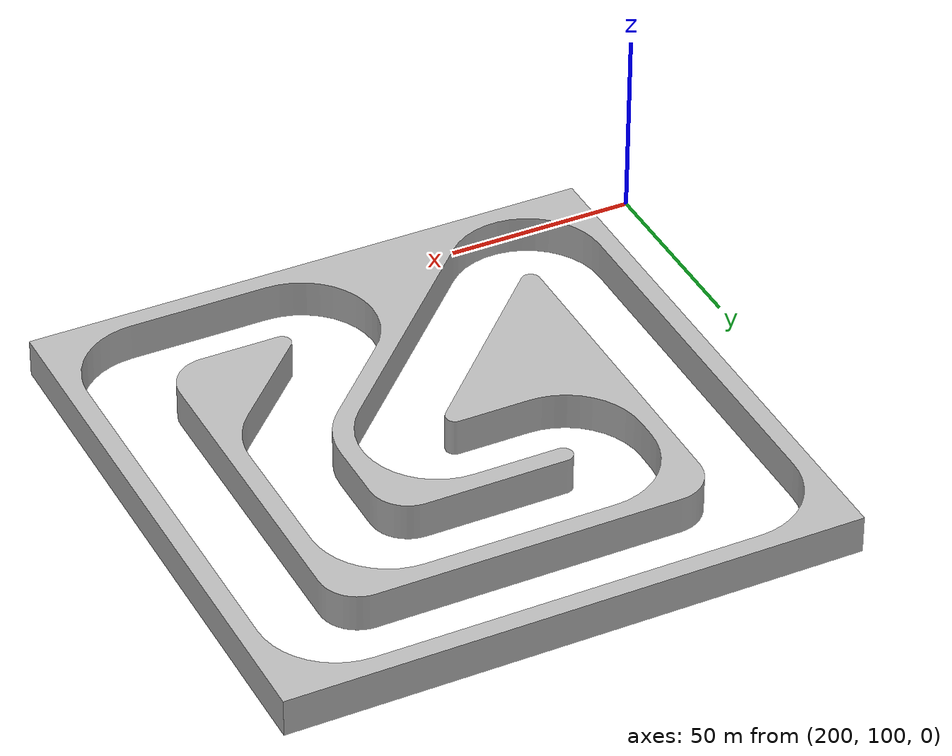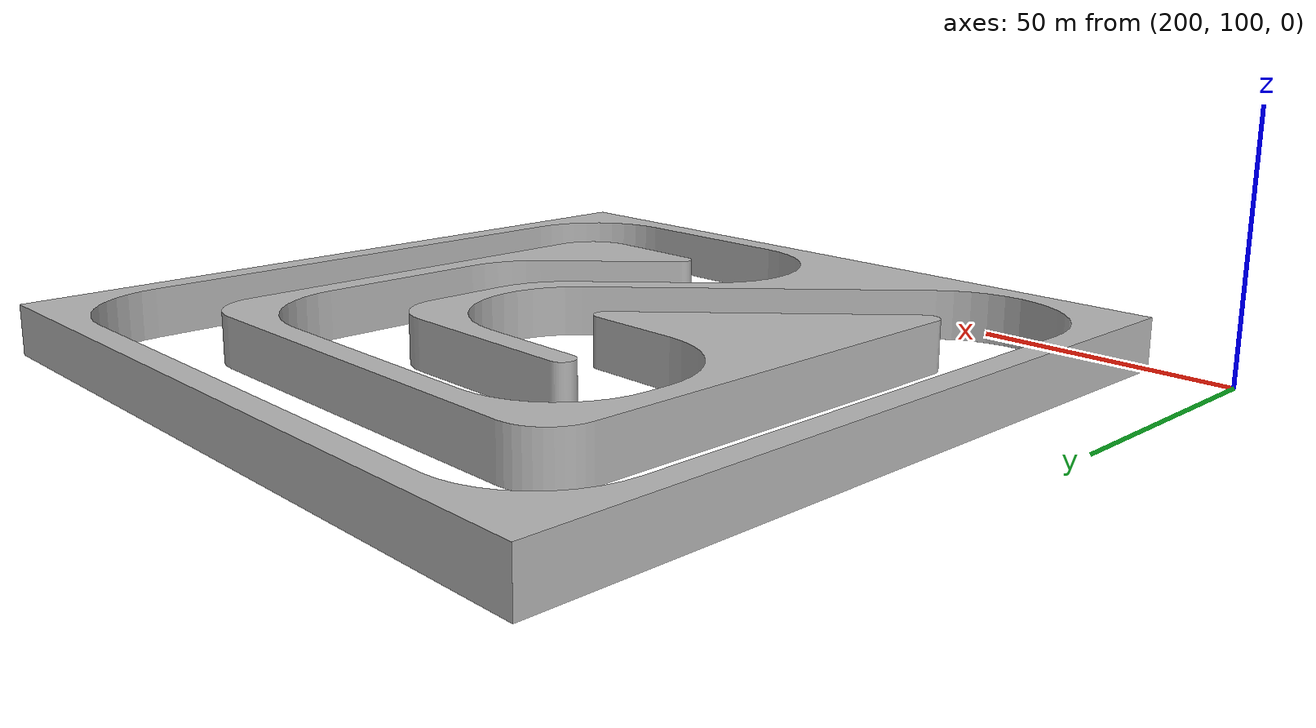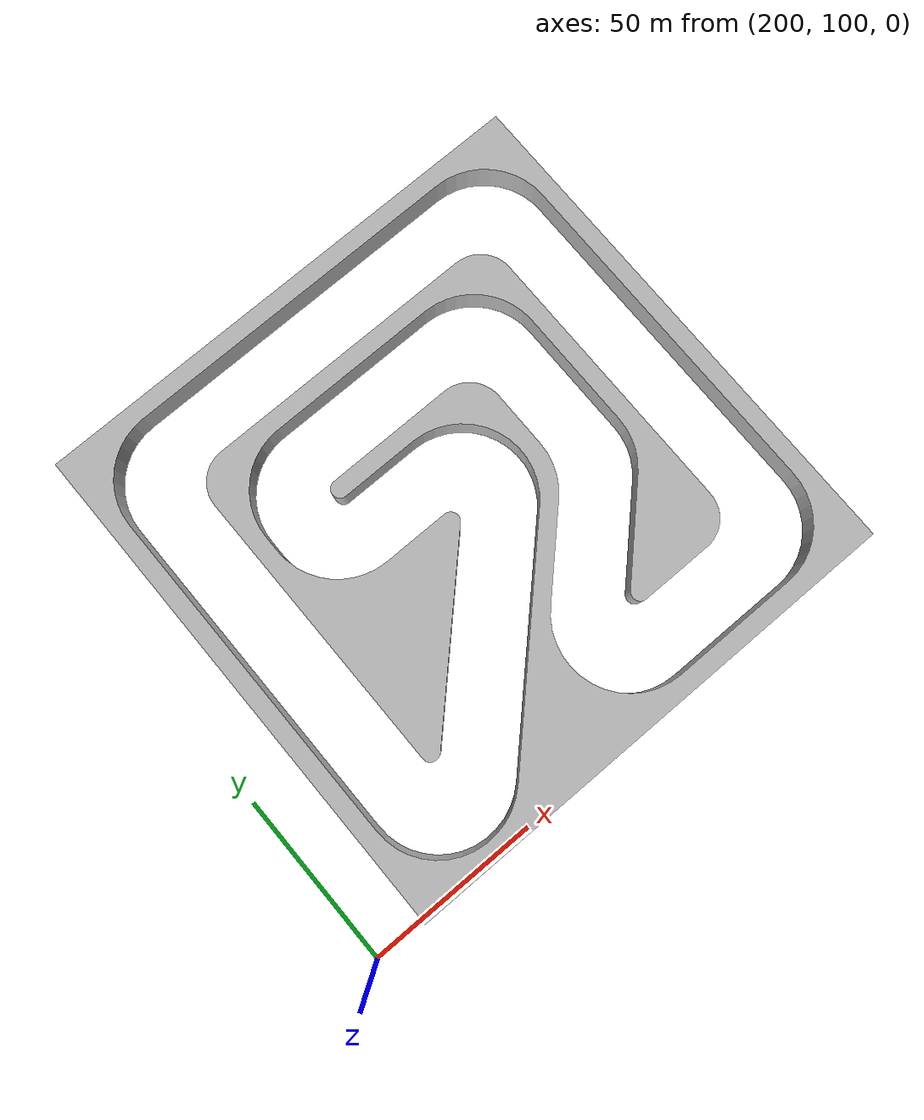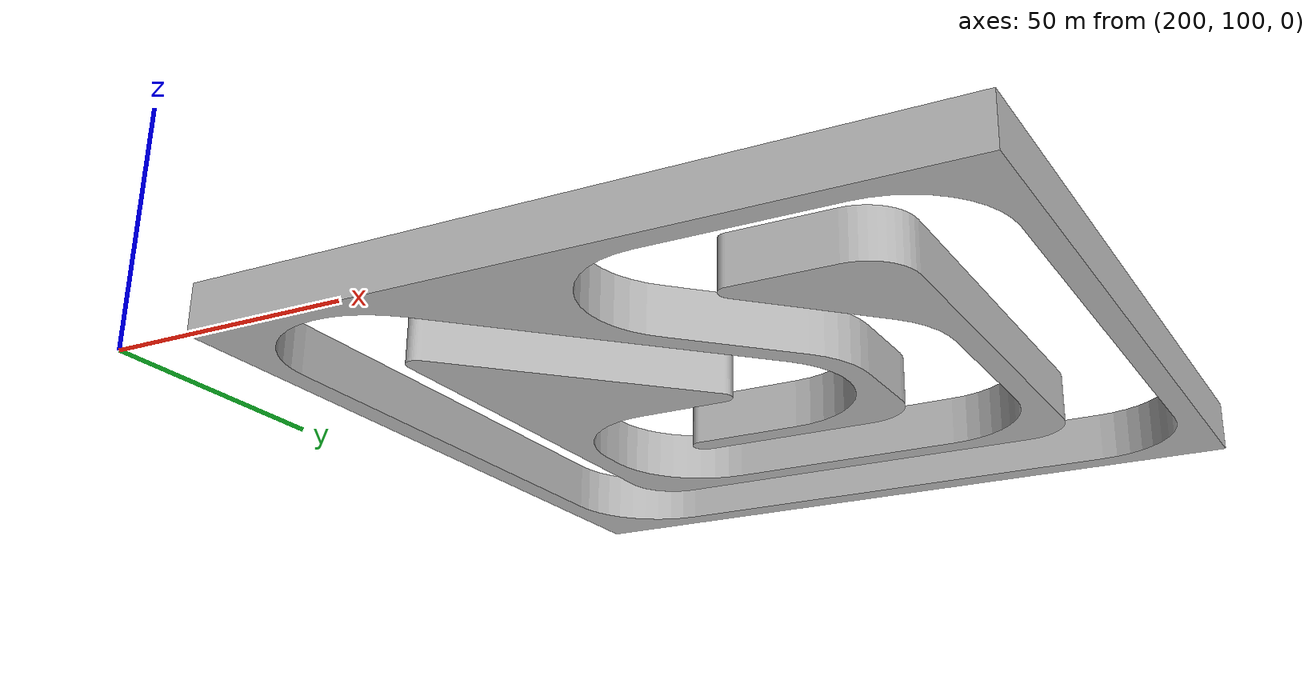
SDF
<?xml version='1.0'?>

<sdf version='1.4'>

  <model name="porto_track">

    <link name="link">

      <collision name="collision">
        <geometry>
          <mesh>
            <uri>model://f1tenth-sim/world/race_track/race_track.stl</uri>
          </mesh>
        </geometry>
      </collision>

      <visual name="visual">
        <geometry>
          <mesh>
            <uri>model://f1tenth-sim/world/race_track/race_track.stl</uri>
          </mesh>
        </geometry>
      </visual>

    </link>

    <static>1</static>

  </model>

</sdf>
